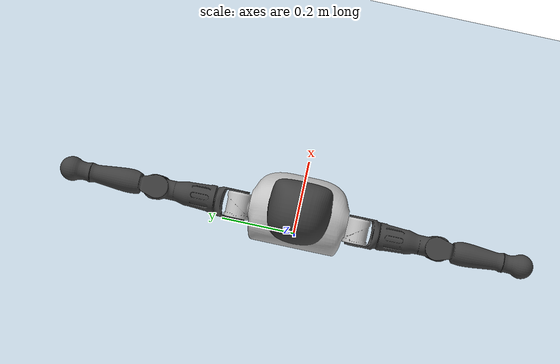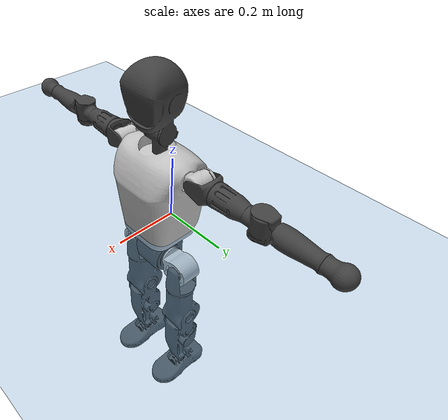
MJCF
<mujoco model="T1">
  <compiler angle="radian" assetdir="assets" balanceinertia="true" inertiafromgeom="false"/>

  <option timestep="0.005" density="1.2" viscosity="2e-05"/>

  <size nkey="1"/>

  <visual>
    <quality shadowsize="8192"/>
    <map shadowclip="0.5"/>
  </visual>

  <default>
    <default class="/">
      <joint armature="0.01" damping="0.01" frictionloss="0.1"/>
      <geom contype="0" conaffinity="0" group="1" solref="-1000 -80"/>
      <site size="0.01 0.005 0.005" group="5"/>
      <general forcelimited="true" biastype="affine" gainprm="25" biasprm="0 -25 -0.6"/>
      <default class="t1">
        <geom rgba="0.25 0.25 0.25 1"/>
        <default class="visual">
          <geom type="mesh" group="2"/>
        </default>
        <default class="collision">
          <geom group="3"/>
        </default>
        <default class="foot">
          <geom size="0.1115 0.05 0.015" type="box" condim="6" group="4" priority="1" solimp="0.015 1 0.015"/>
        </default>
        <default class="reward_collision_sphere">
          <geom group="5" rgba="1 0 0 1"/>
        </default>
      </default>
    </default>
  </default>

  <asset>
    <texture type="skybox" colorspace="auto" name="//unnamed_texture_0" builtin="gradient" rgb1="0.95 0.95 0.95" rgb2="0.95 0.95 0.95" width="100" height="600"/>
    <texture type="2d" colorspace="auto" name="texplane" builtin="checker" rgb1="0.345 0.575 0.748" rgb2="0.345 0.575 0.748" markrgb="1 1 1" width="512" height="512"/>
    <material name="MatPlane" class="/" texture="texplane" texuniform="true" texrepeat="2 2" specular="0.9"/>
    <mesh name="Trunk" class="/" file="Trunk.stl"/>
    <mesh name="H1" class="/" file="H1.stl"/>
    <mesh name="H2" class="/" file="H2.stl"/>
    <mesh name="AL1" class="/" file="AL1.stl"/>
    <mesh name="AL2" class="/" file="AL2.stl"/>
    <mesh name="AL3" class="/" file="AL3.stl"/>
    <mesh name="left_hand_link" class="/" file="left_hand_link.stl"/>
    <mesh name="AR1" class="/" file="AR1.stl"/>
    <mesh name="AR2" class="/" file="AR2.stl"/>
    <mesh name="AR3" class="/" file="AR3.stl"/>
    <mesh name="right_hand_link" class="/" file="right_hand_link.stl"/>
    <mesh name="Waist" class="/" file="Waist.stl"/>
    <mesh name="Hip_Pitch_Left" class="/" file="Hip_Pitch_Left.stl"/>
    <mesh name="Hip_Roll_Left" class="/" file="Hip_Roll_Left.stl"/>
    <mesh name="Hip_Yaw_Left" class="/" file="Hip_Yaw_Left.stl"/>
    <mesh name="Shank_Left" class="/" file="Shank_Left.stl"/>
    <mesh name="Ankle_Cross_Left" class="/" file="Ankle_Cross_Left.stl"/>
    <mesh name="left_foot_link" class="/" file="left_foot_link.stl"/>
    <mesh name="Hip_Pitch_Right" class="/" file="Hip_Pitch_Right.stl"/>
    <mesh name="Hip_Roll_Right" class="/" file="Hip_Roll_Right.stl"/>
    <mesh name="Hip_Yaw_Right" class="/" file="Hip_Yaw_Right.stl"/>
    <mesh name="Shank_Right" class="/" file="Shank_Right.stl"/>
    <mesh name="Ankle_Cross_Right" class="/" file="Ankle_Cross_Right.stl"/>
    <mesh name="right_foot_link" class="/" file="right_foot_link.stl"/>
  </asset>

  <worldbody>
    <geom name="floor" class="/" size="100 100 0.125" type="plane" group="0" material="MatPlane"/>
    <light name="toplight_shadow" class="/" pos="0 0 5" dir="0.0990148 0.0990148 -0.990148" type="directional" ambient="0.04 0.04 0.04" diffuse="0.55 0.55 0.55" specular="0.12 0.12 0.12"/>
    <light name="toplight_fill" class="/" pos="0 0 5" dir="0.0990148 0.0990148 -0.990148" type="directional" castshadow="false" ambient="0.04 0.04 0.04" diffuse="0.3 0.3 0.3" specular="0.08 0.08 0.08"/>
    <body name="trunk" childclass="t1" pos="9.02553e-05 0.000501281 -0.000609885" quat="1 -4.19987e-05 -4.32869e-05 4.66439e-05">
      <inertial pos="0.0426312 0.000101754 0.106574" quat="0.999949 -0.00428493 -0.00902982 0.00154075" mass="9.28471" diaginertia="0.0281818 0.0657226 0.0602264"/>
      <joint name="//unnamed_joint_0" type="free" armature="0" damping="0" frictionloss="0"/>
      <geom name="//unnamed_geom_1" class="visual" rgba="0.76 0.76 0.76 1" mesh="Trunk"/>
      <geom name="//unnamed_geom_2" class="collision" size="0.0692996 0.0923994 0.138599" pos="0.0474243 0 0.121844" type="box"/>
      <geom name="//unnamed_geom_3" class="reward_collision_sphere" size="0.106259" pos="0.0474243 0 0.101536"/>
      <geom name="//unnamed_geom_4" class="reward_collision_sphere" size="0.0138599" pos="0.0474243 0.0821282 0"/>
      <geom name="//unnamed_geom_5" class="reward_collision_sphere" size="0.0138599" pos="0.0474243 -0.0821282 0"/>
      <geom name="//unnamed_geom_6" class="reward_collision_sphere" size="0.0138599" pos="0.0474243 0.103385 0.182765"/>
      <geom name="//unnamed_geom_7" class="reward_collision_sphere" size="0.0138599" pos="0.0474243 -0.103385 0.182765"/>
      <site name="imu" pos="0.000159344 -0.000347905 0.00236834" size="0.00923994"/>
      <camera name="track" pos="0 -1.93243 0" quat="0.707107 0.707107 0 0" mode="trackcom"/>
      <camera name="ego_camera" pos="0.0964295 0 0.426453" quat="-0.5 -0.5 0.5 0.5"/>
      <body name="H1" pos="0.0486117 0.000726416 0.246632" quat="1 -0.000107728 -7.9992e-05 4.06218e-05">
        <inertial pos="-0.00123697 -0.0021549 0.0578195" quat="0.763923 -0.0132141 0.00158015 0.645171" mass="0.348497" diaginertia="7.51036e-05 0.000185929 0.000161049"/>
        <joint name="AAHead_yaw" pos="0 0 0" axis="0.00123016 -0.00136794 0.999998" range="-1.58121 1.58412" armature="0.00936747" damping="0.0114739" frictionloss="0.096536"/>
        <geom name="//unnamed_geom_8" class="visual" mesh="H1"/>
        <body name="H2" pos="-0.00064144 -0.000526925 0.0614686" quat="1 0.000205895 -0.000381604 -0.000211039">
          <inertial pos="0.00623262 -6.60122e-05 0.0994736" quat="0.988417 0.106664 -0.0711559 -0.0811937" mass="0.497376" diaginertia="0.000629197 0.00164423 0.0018387"/>
          <joint name="Head_pitch" pos="0 0 0" axis="-0.0011135 -0.999994 -0.00338687" range="-1.21214 0.352178" armature="0.00912418" damping="0.00507723" frictionloss="0.0919827"/>
          <geom name="//unnamed_geom_9" class="visual" mesh="H2"/>
          <geom name="//unnamed_geom_10" class="collision" size="0.0739195" pos="0.00790406 0 0.11169"/>
          <geom name="//unnamed_geom_11" class="reward_collision_sphere" size="0.0831595" pos="0.0158081 0 0.101536"/>
        </body>
      </body>
      <body name="AL1" pos="0.0460297 0.102766 0.223244" quat="1 -0.000119907 0.00046267 -5.40671e-06">
        <inertial pos="-0.000594808 0.0440398 -0.00018441" quat="0.504628 0.495197 -0.504588 0.495501" mass="0.420522" diaginertia="0.000429356 0.00109751 0.000319884"/>
        <joint name="Left_Shoulder_Pitch" pos="0 0 0" axis="0.00200141 0.999995 0.00238554" range="-3.29829 1.21819" armature="0.00965322" damping="0.0122951" frictionloss="0.0955576"/>
        <geom name="//unnamed_geom_12" class="visual" rgba="0.76 0.76 0.76 1" mesh="AL1"/>
        <body name="AL2" pos="0.000415707 0.0456965 -4.8333e-05" quat="1 -8.20015e-05 1.55861e-05 -6.35655e-05">
          <inertial pos="0.00381207 0.0356742 -0.000244477" quat="0.487699 0.50909 -0.487376 0.515211" mass="0.126424" diaginertia="0.000123483 0.00029116 0.00019161"/>
          <joint name="Left_Shoulder_Roll" pos="0 0 0" axis="-1 0.000310795 0.000759594" stiffness="0.00280031" range="-1.5716 1.7309" armature="0.00883131" damping="0.00136173" frictionloss="0.0914964"/>
          <geom name="//unnamed_geom_13" class="visual" mesh="AL2"/>
          <body name="AL3" pos="0.00163957 0.0592937 0.000956664" quat="1 2.98406e-05 -8.61162e-06 3.74703e-05">
            <inertial pos="-0.000126201 0.0829286 -0.000864957" quat="0.706073 0.708123 0.00148768 0.00445319" mass="0.813832" diaginertia="0.0040062 0.0110458 0.000675165"/>
            <joint name="Left_Elbow_Pitch" pos="0 0 0" axis="-0.00085242 -1 0.000114415" range="-2.26688 2.28298" armature="0.00903608" damping="0.00951779" frictionloss="0.0957705"/>
            <geom name="//unnamed_geom_14" class="visual" mesh="AL3"/>
            <geom name="//unnamed_geom_15" class="collision" size="0.0277198 0.0692996" pos="0 0.0483107 0" quat="0.707105 0.707108 0 0" type="cylinder"/>
            <geom name="//unnamed_geom_16" class="reward_collision_sphere" size="0.0332638"/>
            <body name="left_hand_link" pos="0.00138229 0.141991 0.00119032" quat="1 9.61134e-05 -0.000151519 0.000209133">
              <inertial pos="-0.000853473 0.105228 8.66457e-05" quat="0.706854 0.707358 0.00134215 0.00027142" mass="0.260443" diaginertia="0.00252848 0.00679055 0.000232054"/>
              <joint name="Left_Elbow_Yaw" pos="0 0 0" axis="0.00145267 0.0013661 0.999998" range="-2.42975 0.0171167" armature="0.00939608" damping="0.00894137" frictionloss="0.08844"/>
              <geom name="//unnamed_geom_17" class="visual" mesh="left_hand_link"/>
              <geom name="//unnamed_geom_18" class="collision" size="0.0277198 0.0808495" pos="0 0.125608 0" quat="0.707105 0.707108 0 0" type="cylinder"/>
              <geom name="//unnamed_geom_19" class="reward_collision_sphere" size="0.0461997"/>
              <geom name="//unnamed_geom_20" class="reward_collision_sphere" size="0.0323398" pos="0 0.106284 0"/>
              <geom name="//unnamed_geom_21" class="reward_collision_sphere" size="0.0323398" pos="0 0.207736 0"/>
            </body>
          </body>
        </body>
      </body>
      <body name="AR1" pos="0.0446092 -0.101602 0.221938" quat="1 3.11452e-05 0.000321292 8.86697e-05">
        <inertial pos="-0.00119632 -0.0436643 -0.000373195" quat="0.504242 0.495318 -0.505009 0.495345" mass="0.413643" diaginertia="0.000422658 0.0011009 0.000316844"/>
        <joint name="Right_Shoulder_Pitch" pos="0 0 0" axis="0.00634818 -0.999975 0.00295674" range="-1.22639 3.315" armature="0.00898384" damping="0.00302923" frictionloss="0.0900848"/>
        <geom name="//unnamed_geom_22" class="visual" rgba="0.76 0.76 0.76 1" mesh="AR1"/>
        <body name="AR2" pos="0.000108702 -0.0442624 0.000394809" quat="1 -7.71812e-05 -7.18321e-05 -3.40132e-05">
          <inertial pos="0.00235619 -0.0367318 0.000894671" quat="0.5117 0.487658 -0.512018 0.488047" mass="0.12731" diaginertia="0.000124055 0.000295117 0.000192098"/>
          <joint name="Right_Shoulder_Roll" pos="0 0 0" axis="-0.999934 -0.00853223 -0.0076368" range="-1.73402 1.55828" armature="0.00902332" damping="0.00856741" frictionloss="0.0906023"/>
          <geom name="//unnamed_geom_23" class="visual" mesh="AR2"/>
          <body name="AR3" pos="-0.000312277 -0.0582926 0.000885937" quat="1 -0.000127508 -0.000243764 -0.00027317">
            <inertial pos="-0.000459257 -0.0830823 -0.000324433" quat="0.707608 0.706598 0.0027169 0.00167271" mass="0.811033" diaginertia="0.0040312 0.0109583 0.000679952"/>
            <joint name="Right_Elbow_Pitch" pos="0 0 0" axis="0.000666167 0.999999 0.00101904" range="-2.26023 2.27187" armature="0.00939464" damping="0.00633797" frictionloss="0.0929286"/>
            <geom name="//unnamed_geom_24" class="visual" mesh="AR3"/>
            <geom name="//unnamed_geom_25" class="collision" size="0.0277198 0.0692996" pos="0 -0.0483107 0" quat="0.707105 0.707108 0 0" type="cylinder"/>
            <geom name="//unnamed_geom_26" class="reward_collision_sphere" size="0.0332638"/>
            <body name="right_hand_link" pos="-0.000215675 -0.141931 -0.000797652" quat="1 4.58909e-05 0.000253704 4.74758e-05">
              <inertial pos="-0.000502722 -0.105765 0.000452432" quat="0.707091 0.707108 0.00349449 -0.00274371" mass="0.258588" diaginertia="0.00255382 0.00688894 0.000234792"/>
              <joint name="Right_Elbow_Yaw" pos="0 0 0" axis="0.000429774 -0.00136452 0.999999" range="-0.00719447 2.43543" armature="0.00911843" damping="0.00703605" frictionloss="0.0927957"/>
              <geom name="//unnamed_geom_27" class="visual" mesh="right_hand_link"/>
              <geom name="//unnamed_geom_28" class="collision" size="0.0277198 0.0808495" pos="0 -0.125608 0" quat="0.707105 0.707108 0 0" type="cylinder"/>
              <geom name="//unnamed_geom_29" class="reward_collision_sphere" size="0.0461997"/>
              <geom name="//unnamed_geom_30" class="reward_collision_sphere" size="0.0323398" pos="0 -0.106284 0"/>
              <geom name="//unnamed_geom_31" class="reward_collision_sphere" size="0.0323398" pos="0 -0.207736 0"/>
            </body>
          </body>
        </body>
      </body>
      <body name="Waist" pos="0.0488162 -0.000834304 -0.116598" quat="1 0.000242711 0.000119459 0.000143231">
        <inertial pos="0.00199779 -7.16714e-05 0.00800331" quat="0.983656 0.000236273 -0.18004 0.00261998" mass="1.99401" diaginertia="0.00162999 0.00440679 0.00506982"/>
        <joint name="Waist" pos="0 0 0" axis="0.00265778 -0.00297882 0.999992" range="-1.56949 1.56989" armature="0.00926861" damping="0.0130591" frictionloss="0.0905026"/>
        <geom name="//unnamed_geom_32" class="visual" mesh="Waist"/>
        <body name="Hip_Pitch_Left" pos="-0.000604422 0.102084 -0.000217084" quat="1 -6.52781e-05 5.9519e-05 2.29995e-05">
          <inertial pos="0.000279708 -0.00740835 -0.0183664" quat="0.975094 0.221268 0.0150849 -0.00235654" mass="0.806482" diaginertia="0.000558939 0.00125178 0.00137832"/>
          <joint name="Left_Hip_Pitch" pos="0 0 0" axis="0.00154568 0.999999 0.000533103" range="-1.81016 1.57284" armature="0.00924306" damping="0.00844382" frictionloss="0.0905659"/>
          <geom name="//unnamed_geom_33" class="visual" rgba="0.76 0.76 0.76 1" mesh="Hip_Pitch_Left"/>
          <body name="Hip_Roll_Left" pos="0.000848669 -0.000582202 -0.021537" quat="1 -0.000341587 -0.000537259 -0.000106817">
            <inertial pos="0.00102342 0.000501272 -0.0542212" quat="0.707707 -0.00289295 -0.00320512 0.706493" mass="0.30447" diaginertia="0.000542794 0.00129244 0.000559157"/>
            <joint name="Left_Hip_Roll" pos="0 0 0" axis="-0.999995 -0.00144297 0.00266731" stiffness="0.000140871" range="-1.55501 0.207123" armature="0.00926289" damping="0.0118208" frictionloss="0.0931869"/>
            <geom name="//unnamed_geom_34" class="visual" mesh="Hip_Roll_Left"/>
            <geom name="//unnamed_geom_35" class="reward_collision_sphere" size="0.0508197"/>
            <body name="Hip_Yaw_Left" pos="0.00201139 -0.00029484 -0.0837762" quat="1 0.000196399 0.00011178 0.000275005">
              <inertial pos="-0.00483665 -0.000771912 -0.0898783" quat="0.696249 -0.035663 -0.032958 0.716156" mass="1.70705" diaginertia="0.00798137 0.0211869 0.0027638"/>
              <joint name="Left_Hip_Yaw" pos="0 0 0" axis="0.00319358 -0.00448543 -0.999985" stiffness="0.000290733" range="-0.996545 0.99829" armature="0.00941572" damping="0.00632337" frictionloss="0.088847"/>
              <geom name="//unnamed_geom_36" class="visual" mesh="Hip_Yaw_Left"/>
              <geom name="//unnamed_geom_37" class="collision" size="0.0461997 0.0739195" type="cylinder"/>
              <body name="Shank_Left" pos="-0.0115835 -0.000343143 -0.137025" quat="1 -2.07442e-05 6.46368e-06 -4.40642e-05">
                <inertial pos="-0.00496614 0.000656921 -0.126527" quat="0.99755 0.00184656 -0.0217394 0.066462" mass="1.38482" diaginertia="0.0107595 0.0295517 0.00202889"/>
                <joint name="Left_Knee_Pitch" pos="0 0 0" axis="-0.00207877 0.999995 -0.00241709" range="-0.0189926 2.32761" armature="0.00924909" damping="0.00768661" frictionloss="0.0929436"/>
                <geom name="//unnamed_geom_38" class="visual" mesh="Shank_Left"/>
                <geom name="//unnamed_geom_39" class="collision" size="0.0461997 0.0692996" pos="0 0 -0.121844" type="cylinder"/>
                <geom name="//unnamed_geom_40" class="reward_collision_sphere" size="0.0600596"/>
                <body name="Ankle_Cross_Left" pos="0.000136191 0.000283684 -0.283952" quat="1 0.000293255 -0.000149315 -0.000246087">
                  <inertial pos="-0.00347232 0.000312784 -0.00725808" quat="0.442941 0.551001 0.551064 0.443318" mass="0.0577846" diaginertia="8.88131e-06 2.18043e-05 1.22574e-05"/>
                  <joint name="Left_Ankle_Pitch" pos="0 0 0" axis="0.0041864 0.999991 -0.000359003" range="-0.868582 0.347058" armature="0.00906277" damping="0.00430217" frictionloss="0.0958808"/>
                  <geom name="//unnamed_geom_41" class="visual" mesh="Ankle_Cross_Left"/>
                  <body name="left_foot_link" pos="-8.09227e-05 -0.00117576 -0.012308" quat="1 9.41535e-05 0.000154187 -9.42036e-05">
                    <inertial pos="-0.000192864 -0.000233831 -0.00926623" quat="0.0015655 0.618154 -0.00256368 0.786052" mass="0.539818" diaginertia="0.000845327 0.00199046 0.00234347"/>
                    <joint name="Left_Ankle_Roll" pos="0 0 0" axis="-0.999998 -0.00126216 -0.00147331" range="-0.436459 0.448874" armature="0.00960092" damping="0.0084466" frictionloss="0.0914979"/>
                    <geom name="//unnamed_geom_42" class="visual" mesh="left_foot_link"/>
                    <geom name="left_foot" class="foot" size="0.102217 0.0436718 0.0140022" pos="0.00790406 0 -0.0152305"/>
                    <geom name="//unnamed_geom_44" class="reward_collision_sphere" size="0.0480477" pos="0.00790406 0 -0.0152305"/>
                    <geom name="//unnamed_geom_45" class="reward_collision_sphere" size="0.0277198" pos="0.0750885 -0.0222229 -0.0152305"/>
                    <geom name="//unnamed_geom_46" class="reward_collision_sphere" size="0.0277198" pos="-0.0553284 -0.0222229 -0.0152305"/>
                    <site name="left_foot" class="foot" pos="0.00790406 0 -0.0152305" size="0.00923994"/>
                  </body>
                </body>
              </body>
            </body>
          </body>
        </body>
        <body name="Hip_Pitch_Right" pos="-0.000881856 -0.101994 0.000299065" quat="1 -0.000156637 0.000455425 -9.43595e-05">
          <inertial pos="0.000407882 0.00765239 -0.018115" quat="0.974371 -0.224463 0.0135581 -0.00579154" mass="0.818321" diaginertia="0.000560765 0.00124616 0.00136072"/>
          <joint name="Right_Hip_Pitch" pos="0 0 0" axis="-0.000684784 -1 -0.00049656" range="-1.56244 1.81849" armature="0.00978513" damping="0.00505231" frictionloss="0.0960891"/>
          <geom name="//unnamed_geom_47" class="visual" rgba="0.76 0.76 0.76 1" mesh="Hip_Pitch_Right"/>
          <body name="Hip_Roll_Right" pos="-9.95814e-05 0.000975387 -0.020266" quat="1 -0.000425174 7.51558e-05 6.08475e-05">
            <inertial pos="0.000947242 -0.0007767 -0.0538068" quat="0.707055 -0.00567909 -0.00568333 0.707113" mass="0.301337" diaginertia="0.000532096 0.00125644 0.000548088"/>
            <joint name="Right_Hip_Roll" pos="0 0 0" axis="-0.999987 -0.00474669 -0.00198783" stiffness="0.000248496" range="-0.199457 1.57156" armature="0.0091129" damping="0.00737067" frictionloss="0.0949973"/>
            <geom name="//unnamed_geom_48" class="visual" mesh="Hip_Roll_Right"/>
            <geom name="//unnamed_geom_49" class="reward_collision_sphere" size="0.0508197"/>
            <body name="Hip_Yaw_Right" pos="-0.000183751 0.000465121 -0.0839919" quat="1 3.37115e-05 -6.54515e-06 1.24612e-05">
              <inertial pos="-0.00480791 -0.00141643 -0.0914687" quat="0.713766 -0.0312996 -0.0327952 0.698915" mass="1.66959" diaginertia="0.00783737 0.0210595 0.00275267"/>
              <joint name="Right_Hip_Yaw" pos="0 0 0" axis="-0.000400633 0.00082703 -1" stiffness="0.000296965" range="-0.984951 0.996633" armature="0.00899757" damping="0.00721415" frictionloss="0.092183"/>
              <geom name="//unnamed_geom_50" class="visual" mesh="Hip_Yaw_Right"/>
              <geom name="//unnamed_geom_51" class="collision" size="0.0461997 0.0739195" type="cylinder"/>
              <body name="Shank_Right" pos="-0.0106582 -0.000826706 -0.137031" quat="1 0.000203639 -6.4596e-05 8.24685e-05">
                <inertial pos="-0.00502463 -0.000320031 -0.123718" quat="0.999274 0.00156324 -0.0241405 -0.0294336" mass="1.42057" diaginertia="0.0107452 0.029704 0.00213226"/>
                <joint name="Right_Knee_Pitch" pos="0 0 0" axis="-0.00689241 -0.999976 -0.00119815" range="-2.35825 -0.011342" armature="0.00920913" damping="0.00819008" frictionloss="0.0918583"/>
                <geom name="//unnamed_geom_52" class="visual" mesh="Shank_Right"/>
                <geom name="//unnamed_geom_53" class="collision" size="0.0461997 0.0692996" pos="0 0 -0.121844" type="cylinder"/>
                <geom name="//unnamed_geom_54" class="reward_collision_sphere" size="0.0600596"/>
                <body name="Ankle_Cross_Right" pos="0.000491666 -0.000324959 -0.284034" quat="1 -9.52161e-05 -3.37357e-05 -0.000254315">
                  <inertial pos="-0.0032392 0.000553025 -0.00852433" quat="0.444108 0.552602 0.549346 0.442288" mass="0.0575747" diaginertia="8.84112e-06 2.14671e-05 1.21508e-05"/>
                  <joint name="Right_Ankle_Pitch" pos="0 0 0" axis="-6.41342e-05 -1 1.62259e-05" range="-0.366238 0.862624" armature="0.00921575" damping="0.00918561" frictionloss="0.094499"/>
                  <geom name="//unnamed_geom_55" class="visual" mesh="Ankle_Cross_Right"/>
                  <body name="right_foot_link" pos="0.00101451 -0.00133539 -0.0121672" quat="1 -0.000150077 -0.000147129 -7.01505e-05">
                    <inertial pos="-0.00107384 0.000708801 -0.00939641" quat="-0.000499415 0.618939 0.00303367 0.785433" mass="0.537865" diaginertia="0.000829235 0.00200037 0.00237322"/>
                    <joint name="Right_Ankle_Roll" pos="0 0 0" axis="-1 0.000115564 -0.000833526" range="-0.449115 0.434917" armature="0.00886286" damping="0.0122032" frictionloss="0.0916626"/>
                    <geom name="//unnamed_geom_56" class="visual" mesh="right_foot_link"/>
                    <geom name="right_foot" class="foot" size="0.100384 0.0458326 0.0141768" pos="0.00790406 0 -0.0152305"/>
                    <geom name="//unnamed_geom_58" class="reward_collision_sphere" size="0.0369598"/>
                    <geom name="//unnamed_geom_59" class="reward_collision_sphere" size="0.0277198" pos="0.00790406 0 -0.0152305"/>
                    <geom name="//unnamed_geom_60" class="reward_collision_sphere" size="0.0277198" pos="0.0750885 0.0222229 -0.0152305"/>
                    <geom name="//unnamed_geom_61" class="reward_collision_sphere" size="0.0277198" pos="-0.0553284 0.0222229 -0.0152305"/>
                    <site name="right_foot" class="foot" pos="0.00790406 0 -0.0152305" size="0.00923994"/>
                  </body>
                </body>
              </body>
            </body>
          </body>
        </body>
      </body>
    </body>
  </worldbody>

  <contact>
    <pair class="/" geom1="floor" geom2="left_foot" name="//unnamed_contact_0"/>
    <pair class="/" geom1="floor" geom2="right_foot" name="//unnamed_contact_1"/>
  </contact>

  <actuator>
    <general name="AAHead_yaw" class="/" joint="AAHead_yaw" forcerange="-6.27713 6.27713" gainprm="23.1203" biasprm="0 -23.1203 -0.556661"/>
    <general name="Head_pitch" class="/" joint="Head_pitch" forcerange="-6.29539 6.29539" gainprm="23.1203" biasprm="0 -23.1203 -0.556661"/>
    <general name="Left_Shoulder_Pitch" class="/" joint="Left_Shoulder_Pitch" forcerange="-16.8635 16.8635" gainprm="23.1203" biasprm="0 -23.1203 -0.556661"/>
    <general name="Left_Shoulder_Roll" class="/" joint="Left_Shoulder_Roll" forcerange="-16.5911 16.5911" gainprm="23.1203" biasprm="0 -23.1203 -0.556661"/>
    <general name="Left_Elbow_Pitch" class="/" joint="Left_Elbow_Pitch" forcerange="-16.8644 16.8644" gainprm="23.1203" biasprm="0 -23.1203 -0.556661"/>
    <general name="Left_Elbow_Yaw" class="/" joint="Left_Elbow_Yaw" forcerange="-17.2987 17.2987" gainprm="23.1203" biasprm="0 -23.1203 -0.556661"/>
    <general name="Right_Shoulder_Pitch" class="/" joint="Right_Shoulder_Pitch" forcerange="-16.3911 16.3911" gainprm="23.1203" biasprm="0 -23.1203 -0.556661"/>
    <general name="Right_Shoulder_Roll" class="/" joint="Right_Shoulder_Roll" forcerange="-16.7144 16.7144" gainprm="23.1203" biasprm="0 -23.1203 -0.556661"/>
    <general name="Right_Elbow_Pitch" class="/" joint="Right_Elbow_Pitch" forcerange="-16.9159 16.9159" gainprm="23.1203" biasprm="0 -23.1203 -0.556661"/>
    <general name="Right_Elbow_Yaw" class="/" joint="Right_Elbow_Yaw" forcerange="-16.2615 16.2615" gainprm="23.1203" biasprm="0 -23.1203 -0.556661"/>
    <general name="Waist" class="/" joint="Waist" forcerange="-27.345 27.345" gainprm="23.1203" biasprm="0 -23.1203 -0.556661"/>
    <general name="Left_Hip_Pitch" class="/" joint="Left_Hip_Pitch" forcerange="-41.7231 41.7231" gainprm="23.1203" biasprm="0 -23.1203 -0.556661"/>
    <general name="Left_Hip_Roll" class="/" joint="Left_Hip_Roll" forcerange="-27.7663 27.7663" gainprm="23.1203" biasprm="0 -23.1203 -0.556661"/>
    <general name="Left_Hip_Yaw" class="/" joint="Left_Hip_Yaw" forcerange="-26.8357 26.8357" gainprm="23.1203" biasprm="0 -23.1203 -0.556661"/>
    <general name="Left_Knee_Pitch" class="/" joint="Left_Knee_Pitch" forcerange="-53.8245 53.8245" gainprm="23.1203" biasprm="0 -23.1203 -0.556661"/>
    <general name="Left_Ankle_Pitch" class="/" joint="Left_Ankle_Pitch" forcerange="-17.6199 17.6199" gainprm="23.1203" biasprm="0 -23.1203 -0.556661"/>
    <general name="Left_Ankle_Roll" class="/" joint="Left_Ankle_Roll" forcerange="-14.0091 14.0091" gainprm="23.1203" biasprm="0 -23.1203 -0.556661"/>
    <general name="Right_Hip_Pitch" class="/" joint="Right_Hip_Pitch" forcerange="-41.8616 41.8616" gainprm="23.1203" biasprm="0 -23.1203 -0.556661"/>
    <general name="Right_Hip_Roll" class="/" joint="Right_Hip_Roll" forcerange="-28.6104 28.6104" gainprm="23.1203" biasprm="0 -23.1203 -0.556661"/>
    <general name="Right_Hip_Yaw" class="/" joint="Right_Hip_Yaw" forcerange="-28.6875 28.6875" gainprm="23.1203" biasprm="0 -23.1203 -0.556661"/>
    <general name="Right_Knee_Pitch" class="/" joint="Right_Knee_Pitch" forcerange="-54.8709 54.8709" gainprm="23.1203" biasprm="0 -23.1203 -0.556661"/>
    <general name="Right_Ankle_Pitch" class="/" joint="Right_Ankle_Pitch" forcerange="-17.8592 17.8592" gainprm="23.1203" biasprm="0 -23.1203 -0.556661"/>
    <general name="Right_Ankle_Roll" class="/" joint="Right_Ankle_Roll" forcerange="-13.664 13.664" gainprm="23.1203" biasprm="0 -23.1203 -0.556661"/>
  </actuator>

  <sensor>
    <gyro site="imu" name="imu_angular_velocity"/>
    <velocimeter site="imu" name="imu_linear_velocity"/>
    <framelinvel objtype="site" objname="left_foot" name="left_foot_global_linear_velocity"/>
    <framelinvel objtype="site" objname="right_foot" name="right_foot_global_linear_velocity"/>
  </sensor>

  <keyframe>
    <key name="home" qpos="0 0 0.6385 1 0 0 0 0 0 0 1.4 0 -0.4 0 -1.4 0 0.4 0 -0.4 0 0 0.8 -0.4 0 0.4 0 0 -0.8 0.4 0"/>
  </keyframe>
</mujoco>
